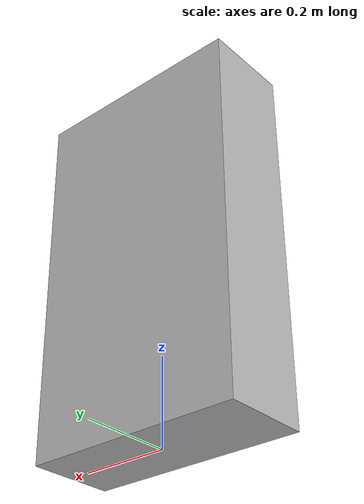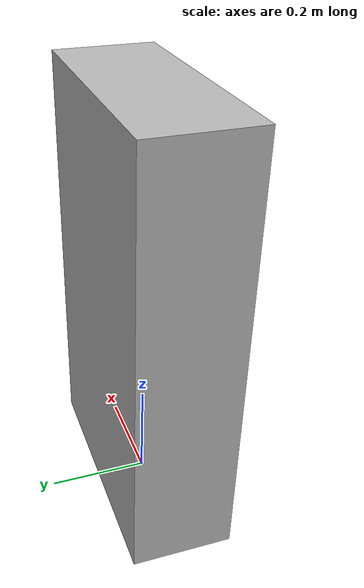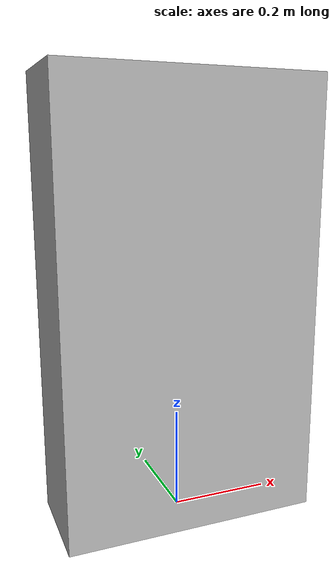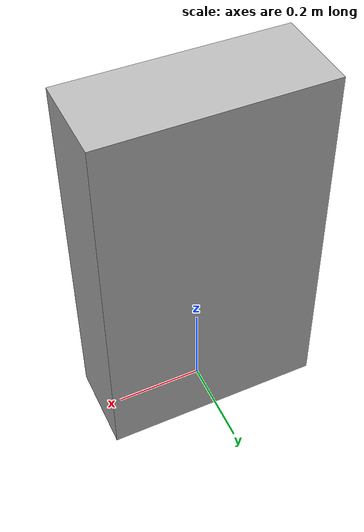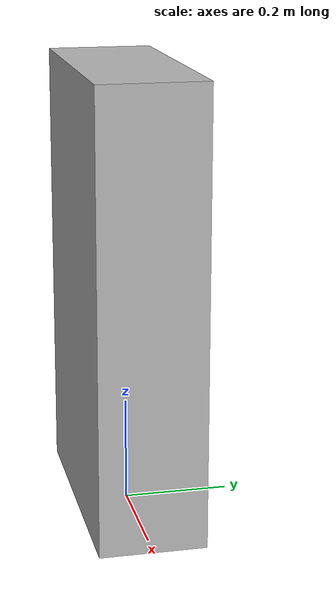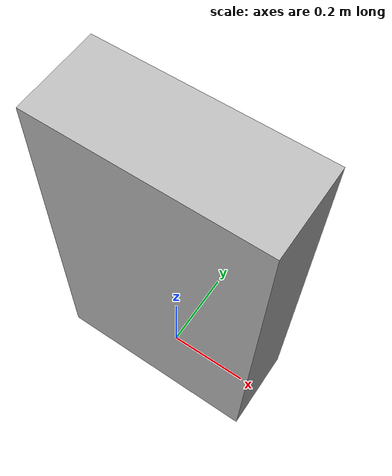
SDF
<?xml version="1.0" ?>
<sdf version="1.6">
  <model name="person_block">
    <static>true</static>
    <link name="link">
      <collision name="collision">
        <geometry>
          <mesh>
            <scale>1 1 1</scale>
            <uri>model://person_block/meshes/person_block.stl</uri>
          </mesh>
        </geometry>
        <surface>
          <friction>
            <ode>
              <mu>1.2</mu>
              <mu2>1.2</mu2>
            </ode>
          </friction>
        </surface>
      </collision>
      <visual name="visual">
        <geometry>
          <mesh>
            <scale>1 1 1</scale>
            <uri>model://person_block/meshes/person_block.dae</uri>
          </mesh>
        </geometry>
      </visual>
    </link>
  </model>
</sdf>
